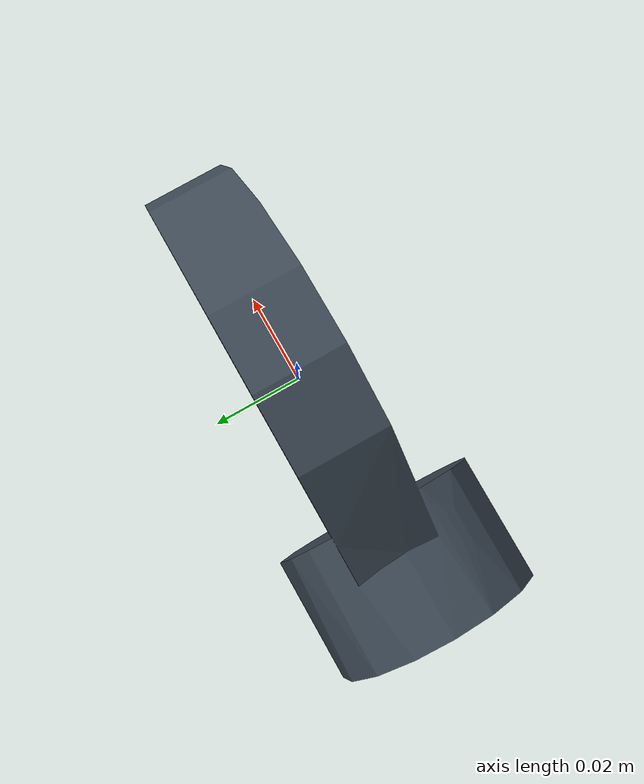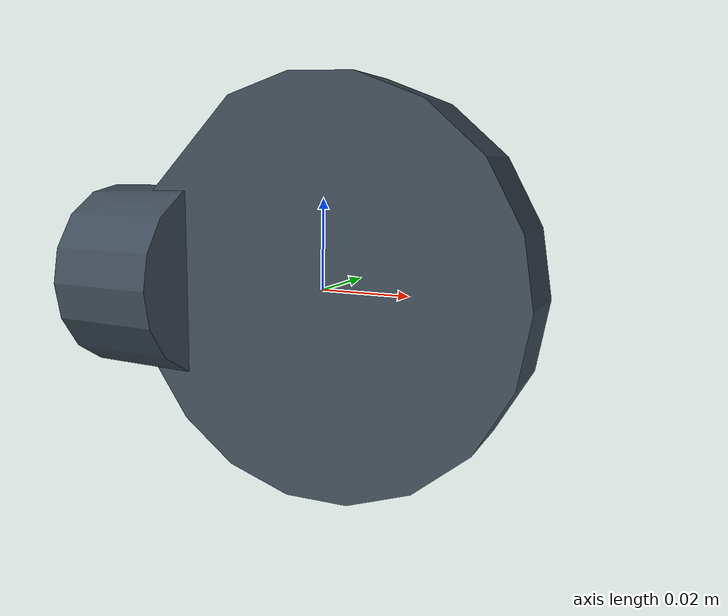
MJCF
<mujoco model="fl_hipx">
  <default>
    <default class="visual">
      <geom group="2" type="mesh" contype="0" conaffinity="0"/>
    </default>
    <default class="collision">
      <geom group="3" type="mesh"/>
    </default>
  </default>
  <asset>
    <material name="Material-7024油漆" specular="0.5" shininess="0.25" rgba="0.239216 0.290196 0.337255 1.000000"/>
    <mesh file="fl_hipx.obj"/>
  </asset>
  <worldbody>
    <body name="fl_hipx">
      <geom material="Material-7024油漆" mesh="fl_hipx" class="visual"/>
      <geom mesh="fl_hipx" class="collision"/>
    </body>
  </worldbody>
</mujoco>
